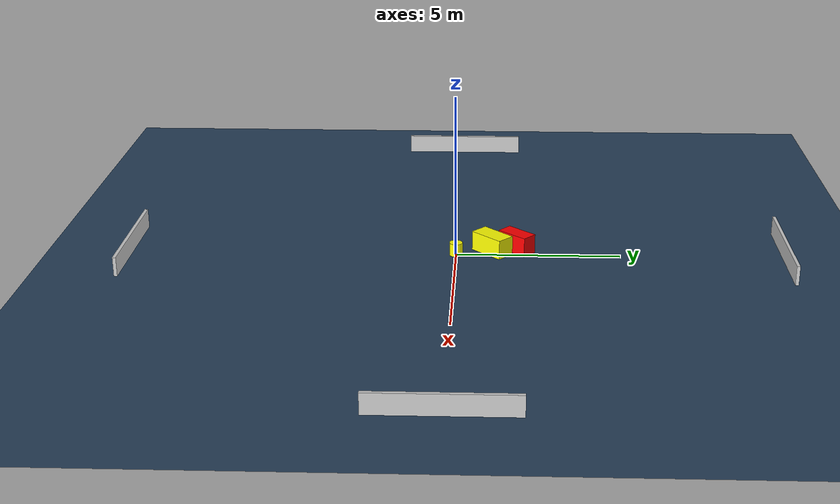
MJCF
<?xml version="1.0" ?>
<mujoco model="generated_environment">
  <option timestep="0.01" integrator="RK4" cone="elliptic"/>
  <default>
    <geom density="1"/>
  </default>
  <asset>
    <texture builtin="gradient" height="3072" name="skybox" rgb1="0.3 0.5 0.7" rgb2="0 0 0" type="skybox" width="512"/>
    <texture builtin="checker" height="300" name="groundplane" rgb1="0.2 0.3 0.4" rgb2="0.1 0.2 0.3" type="2d" width="300"/>
    <material name="groundplane" reflectance="0.2" texrepeat="5 5" texture="groundplane"/>
  </asset>
  <worldbody>
    <light dir="0 0 -1" directional="true" pos="0 0 1.5"/>
    <geom condim="3" friction="0.5 0.005 0.001" material="groundplane" name="floor" pos="0 0 0" size="0 0 0.05" type="plane"/>
    <body name="walls">
      <geom name="wall_1" condim="4" pos="-10.0 0.0 0.3" rgba="0.800000011920929 0.800000011920929 0.800000011920929 1.0" size="0.05 2.0 0.3" type="box"/>
      <geom name="wall_2" condim="4" pos="10.0 0.0 0.3" rgba="0.800000011920929 0.800000011920929 0.800000011920929 1.0" size="0.05 2.0 0.3" type="box"/>
      <geom name="wall_3" condim="4" pos="0.0 -10.0 0.3" rgba="0.800000011920929 0.800000011920929 0.800000011920929 1.0" size="2.0 0.05 0.3" type="box"/>
      <geom name="wall_4" condim="4" pos="0.0 10.0 0.3" rgba="0.800000011920929 0.800000011920929 0.800000011920929 1.0" size="2.0 0.05 0.3" type="box"/>
    </body>
    <body name="robot">
      <joint name="joint_x" type="slide" pos="0 0 0" axis="1 0 0"/>
      <joint name="joint_y" type="slide" pos="0 0 0" axis="0 1 0"/>
      <geom name="robot" type="cylinder" pos="0.0 0.0 0.2" size="0.2 0.2 0.0" mass="5.0" friction="1.0 0.005 0.0001" condim="4" rgba="1.0 1.0 0.0 1.0"/>
    </body>
    <body name="obstacle_1_movable">
      <geom name="obstacle_1_movable" condim="4" pos="-0.24711826970355502 1.1054687541101225 0.3" euler="0 0 136.2401579123343" friction="0.0 0.005 0.001" rgba="1.0 1.0 0.0 1.0" size="0.2893266942306556 0.5791676200395753 0.3" type="box" mass="0.1"/>
      <joint type="free"/>
    </body>
    <body name="obstacle_2_static">
      <geom name="obstacle_2_static" condim="4" pos="-0.3954556670080863 1.8621791052852406 0.3" euler="0 0 137.9470178765022" friction="0.0 0.005 0.001" rgba="1.0 0.0 0.0 1.0" size="0.2496535345931631 0.5209732924511659 0.3" type="box"/>
    </body>
  </worldbody>
  <actuator>
    <motor name="actuator_x" joint="joint_x" gear="1" ctrlrange="-1 1"/>
    <motor name="actuator_y" joint="joint_y" gear="1" ctrlrange="-1 1"/>
  </actuator>
</mujoco>
